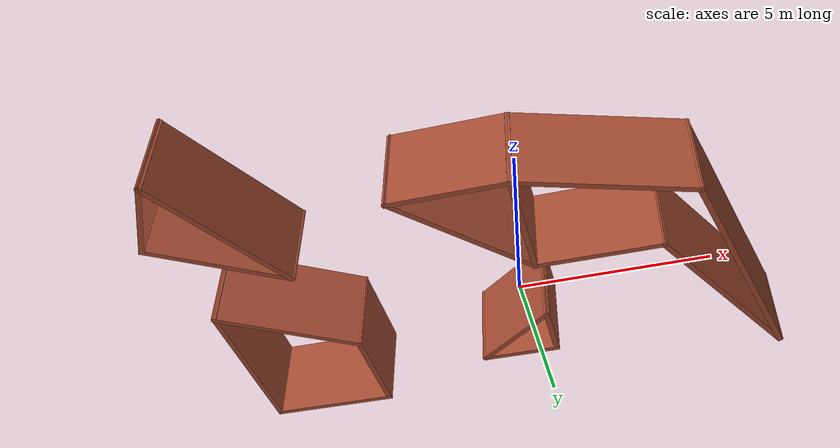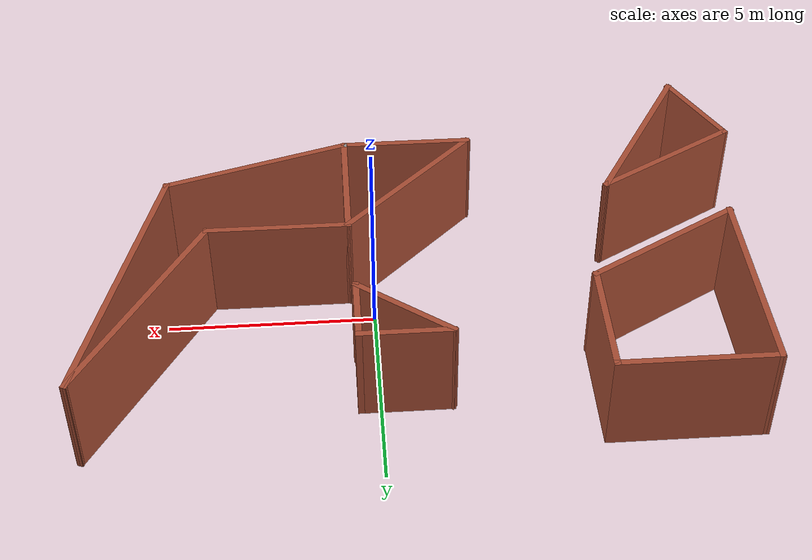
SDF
<?xml version='1.0'?>
<sdf version='1.6'>
  <model name='Untitled2'>
    <pose frame=''>-1.21157 -0.764057 0 0 -0 0</pose>
    <link name='Wall_10'>
      <collision name='Wall_10_Collision'>
        <geometry>
          <box>
            <size>1.75 0.15 2.5</size>
          </box>
        </geometry>
        <pose frame=''>0 0 1.25 0 -0 0</pose>
      </collision>
      <visual name='Wall_10_Visual'>
        <pose frame=''>0 0 1.25 0 -0 0</pose>
        <geometry>
          <box>
            <size>1.75 0.15 2.5</size>
          </box>
        </geometry>
        <material>
          <script>
            <uri>file://media/materials/scripts/gazebo.material</uri>
            <name>Gazebo/Bricks</name>
          </script>
          <ambient>1 1 1 1</ambient>
        </material>
        <meta>
          <layer>0</layer>
        </meta>
      </visual>
      <pose frame=''>1.67157 2.96406 0 0 -0 1.5708</pose>
    </link>
    <link name='Wall_11'>
      <collision name='Wall_11_Collision'>
        <geometry>
          <box>
            <size>2.25 0.15 2.5</size>
          </box>
        </geometry>
        <pose frame=''>0 0 1.25 0 -0 0</pose>
      </collision>
      <visual name='Wall_11_Visual'>
        <pose frame=''>0 0 1.25 0 -0 0</pose>
        <geometry>
          <box>
            <size>2.25 0.15 2.5</size>
          </box>
        </geometry>
        <material>
          <script>
            <uri>file://media/materials/scripts/gazebo.material</uri>
            <name>Gazebo/Bricks</name>
          </script>
          <ambient>1 1 1 1</ambient>
        </material>
        <meta>
          <layer>0</layer>
        </meta>
      </visual>
      <pose frame=''>0.621566 3.76406 0 0 -0 3.14159</pose>
    </link>
    <link name='Wall_12'>
      <collision name='Wall_12_Collision'>
        <geometry>
          <box>
            <size>2.79008 0.15 2.5</size>
          </box>
        </geometry>
        <pose frame=''>0 0 1.25 0 -0 0</pose>
      </collision>
      <visual name='Wall_12_Visual'>
        <pose frame=''>0 0 1.25 0 -0 0</pose>
        <geometry>
          <box>
            <size>2.79008 0.15 2.5</size>
          </box>
        </geometry>
        <material>
          <script>
            <uri>file://media/materials/scripts/gazebo.material</uri>
            <name>Gazebo/Bricks</name>
          </script>
          <ambient>1 1 1 1</ambient>
        </material>
        <meta>
          <layer>0</layer>
        </meta>
      </visual>
      <pose frame=''>0.621566 2.96406 0 0 -0 -0.651077</pose>
    </link>
    <link name='Wall_14'>
      <collision name='Wall_14_Collision'>
        <geometry>
          <box>
            <size>4.53406 0.15 2.5</size>
          </box>
        </geometry>
        <pose frame=''>0 0 1.25 0 -0 0</pose>
      </collision>
      <visual name='Wall_14_Visual'>
        <pose frame=''>0 0 1.25 0 -0 0</pose>
        <geometry>
          <box>
            <size>4.53406 0.15 2.5</size>
          </box>
        </geometry>
        <material>
          <script>
            <uri>file://media/materials/scripts/gazebo.material</uri>
            <name>Gazebo/Bricks</name>
          </script>
          <ambient>1 1 1 1</ambient>
        </material>
        <meta>
          <layer>0</layer>
        </meta>
      </visual>
      <pose frame=''>0.221566 -1.49594 0 0 -0 -2.35619</pose>
    </link>
    <link name='Wall_16'>
      <collision name='Wall_16_Collision'>
        <geometry>
          <box>
            <size>3.75 0.15 2.5</size>
          </box>
        </geometry>
        <pose frame=''>0 0 1.25 0 -0 0</pose>
      </collision>
      <visual name='Wall_16_Visual'>
        <pose frame=''>0 0 1.25 0 -0 0</pose>
        <geometry>
          <box>
            <size>3.75 0.15 2.5</size>
          </box>
        </geometry>
        <material>
          <script>
            <uri>file://media/materials/scripts/gazebo.material</uri>
            <name>Gazebo/Bricks</name>
          </script>
          <ambient>1 1 1 1</ambient>
        </material>
        <meta>
          <layer>0</layer>
        </meta>
      </visual>
      <pose frame=''>-5.61939 5.0377 0 0 -0 0</pose>
    </link>
    <link name='Wall_17'>
      <collision name='Wall_17_Collision'>
        <geometry>
          <box>
            <size>3 0.15 2.5</size>
          </box>
        </geometry>
        <pose frame=''>0 0 1.25 0 -0 0</pose>
      </collision>
      <visual name='Wall_17_Visual'>
        <pose frame=''>0 0 1.25 0 -0 0</pose>
        <geometry>
          <box>
            <size>3 0.15 2.5</size>
          </box>
        </geometry>
        <material>
          <script>
            <uri>file://media/materials/scripts/gazebo.material</uri>
            <name>Gazebo/Bricks</name>
          </script>
          <ambient>1 1 1 1</ambient>
        </material>
        <meta>
          <layer>0</layer>
        </meta>
      </visual>
      <pose frame=''>-3.81939 3.61269 0 0 -0 -1.5708</pose>
    </link>
    <link name='Wall_18'>
      <collision name='Wall_18_Collision'>
        <geometry>
          <box>
            <size>4.25 0.15 2.5</size>
          </box>
        </geometry>
        <pose frame=''>0 0 1.25 0 -0 0</pose>
      </collision>
      <visual name='Wall_18_Visual'>
        <pose frame=''>0 0 1.25 0 -0 0</pose>
        <geometry>
          <box>
            <size>4.25 0.15 2.5</size>
          </box>
        </geometry>
        <material>
          <script>
            <uri>file://media/materials/scripts/gazebo.material</uri>
            <name>Gazebo/Bricks</name>
          </script>
          <ambient>1 1 1 1</ambient>
        </material>
        <meta>
          <layer>0</layer>
        </meta>
      </visual>
      <pose frame=''>-5.59474 1.1627 0 0 -0 -2.61799</pose>
    </link>
    <link name='Wall_19'>
      <collision name='Wall_19_Collision'>
        <geometry>
          <box>
            <size>5.05025 0.15 2.5</size>
          </box>
        </geometry>
        <pose frame=''>0 0 1.25 0 -0 0</pose>
      </collision>
      <visual name='Wall_19_Visual'>
        <pose frame=''>0 0 1.25 0 -0 0</pose>
        <geometry>
          <box>
            <size>5.05025 0.15 2.5</size>
          </box>
        </geometry>
        <material>
          <script>
            <uri>file://media/materials/scripts/gazebo.material</uri>
            <name>Gazebo/Bricks</name>
          </script>
          <ambient>1 1 1 1</ambient>
        </material>
        <meta>
          <layer>0</layer>
        </meta>
      </visual>
      <pose frame=''>-7.39474 2.5877 0 0 -0 1.58086</pose>
    </link>
    <link name='Wall_26'>
      <collision name='Wall_26_Collision'>
        <geometry>
          <box>
            <size>5.75 0.15 2.5</size>
          </box>
        </geometry>
        <pose frame=''>0 0 1.25 0 -0 0</pose>
      </collision>
      <visual name='Wall_26_Visual'>
        <pose frame=''>0 0 1.25 0 -0 0</pose>
        <geometry>
          <box>
            <size>5.75 0.15 2.5</size>
          </box>
        </geometry>
        <material>
          <script>
            <uri>file://media/materials/scripts/gazebo.material</uri>
            <name>Gazebo/Bricks</name>
          </script>
          <ambient>1 1 1 1</ambient>
        </material>
        <meta>
          <layer>0</layer>
        </meta>
      </visual>
      <pose frame=''>6.52157 2.47893 0 0 -0 1.0472</pose>
    </link>
    <link name='Wall_27'>
      <collision name='Wall_27_Collision'>
        <geometry>
          <box>
            <size>7 0.15 2.5</size>
          </box>
        </geometry>
        <pose frame=''>0 0 1.25 0 -0 0</pose>
      </collision>
      <visual name='Wall_27_Visual'>
        <pose frame=''>0 0 1.25 0 -0 0</pose>
        <geometry>
          <box>
            <size>7 0.15 2.5</size>
          </box>
        </geometry>
        <material>
          <script>
            <uri>file://media/materials/scripts/gazebo.material</uri>
            <name>Gazebo/Bricks</name>
          </script>
          <ambient>1 1 1 1</ambient>
        </material>
        <meta>
          <layer>0</layer>
        </meta>
      </visual>
      <pose frame=''>7.03511 1.5955 0 0 -0 -1.8326</pose>
    </link>
    <link name='Wall_28'>
      <collision name='Wall_28_Collision'>
        <geometry>
          <box>
            <size>4.72561 0.15 2.5</size>
          </box>
        </geometry>
        <pose frame=''>0 0 1.25 0 -0 0</pose>
      </collision>
      <visual name='Wall_28_Visual'>
        <pose frame=''>0 0 1.25 0 -0 0</pose>
        <geometry>
          <box>
            <size>4.72561 0.15 2.5</size>
          </box>
        </geometry>
        <material>
          <script>
            <uri>file://media/materials/scripts/gazebo.material</uri>
            <name>Gazebo/Bricks</name>
          </script>
          <ambient>1 1 1 1</ambient>
        </material>
        <meta>
          <layer>0</layer>
        </meta>
      </visual>
      <pose frame=''>3.96011 -2.37937 0 0 -0 -2.84594</pose>
    </link>
    <link name='Wall_3'>
      <collision name='Wall_3_Collision'>
        <geometry>
          <box>
            <size>3.25 0.15 2.5</size>
          </box>
        </geometry>
        <pose frame=''>0 0 1.25 0 -0 0</pose>
      </collision>
      <visual name='Wall_3_Visual'>
        <pose frame=''>0 0 1.25 0 -0 0</pose>
        <geometry>
          <box>
            <size>3.25 0.15 2.5</size>
          </box>
        </geometry>
        <material>
          <script>
            <uri>file://media/materials/scripts/gazebo.material</uri>
            <name>Gazebo/Bricks</name>
          </script>
          <ambient>1 1 1 1</ambient>
        </material>
        <meta>
          <layer>0</layer>
        </meta>
      </visual>
      <pose frame=''>0.221566 -3.04594 0 0 -0 0</pose>
    </link>
    <link name='Wall_30'>
      <collision name='Wall_30_Collision'>
        <geometry>
          <box>
            <size>4 0.15 2.5</size>
          </box>
        </geometry>
        <pose frame=''>0 0 1.25 0 -0 0</pose>
      </collision>
      <visual name='Wall_30_Visual'>
        <pose frame=''>0 0 1.25 0 -0 0</pose>
        <geometry>
          <box>
            <size>4 0.15 2.5</size>
          </box>
        </geometry>
        <material>
          <script>
            <uri>file://media/materials/scripts/gazebo.material</uri>
            <name>Gazebo/Bricks</name>
          </script>
          <ambient>1 1 1 1</ambient>
        </material>
        <meta>
          <layer>0</layer>
        </meta>
      </visual>
      <pose frame=''>-6.25447 -1.98978 0 0 -0 0.523599</pose>
    </link>
    <link name='Wall_31'>
      <collision name='Wall_31_Collision'>
        <geometry>
          <box>
            <size>4.75 0.15 2.5</size>
          </box>
        </geometry>
        <pose frame=''>0 0 1.25 0 -0 0</pose>
      </collision>
      <visual name='Wall_31_Visual'>
        <pose frame=''>0 0 1.25 0 -0 0</pose>
        <geometry>
          <box>
            <size>4.75 0.15 2.5</size>
          </box>
        </geometry>
        <material>
          <script>
            <uri>file://media/materials/scripts/gazebo.material</uri>
            <name>Gazebo/Bricks</name>
          </script>
          <ambient>1 1 1 1</ambient>
        </material>
        <meta>
          <layer>0</layer>
        </meta>
      </visual>
      <pose frame=''>-5.73737 -3.01913 0 0 -0 -2.0944</pose>
    </link>
    <link name='Wall_32'>
      <collision name='Wall_32_Collision'>
        <geometry>
          <box>
            <size>2.45388 0.15 2.5</size>
          </box>
        </geometry>
        <pose frame=''>0 0 1.25 0 -0 0</pose>
      </collision>
      <visual name='Wall_32_Visual'>
        <pose frame=''>0 0 1.25 0 -0 0</pose>
        <geometry>
          <box>
            <size>2.45388 0.15 2.5</size>
          </box>
        </geometry>
        <material>
          <script>
            <uri>file://media/materials/scripts/gazebo.material</uri>
            <name>Gazebo/Bricks</name>
          </script>
          <ambient>1 1 1 1</ambient>
        </material>
        <meta>
          <layer>0</layer>
        </meta>
      </visual>
      <pose frame=''>-7.40447 -3.98163 0 0 -0 2.03632</pose>
    </link>
    <link name='Wall_4'>
      <collision name='Wall_4_Collision'>
        <geometry>
          <box>
            <size>0.15 0.15 2.5</size>
          </box>
        </geometry>
        <pose frame=''>0 0 1.25 0 -0 0</pose>
      </collision>
      <visual name='Wall_4_Visual'>
        <pose frame=''>0 0 1.25 0 -0 0</pose>
        <geometry>
          <box>
            <size>0.15 0.15 2.5</size>
          </box>
        </geometry>
        <material>
          <script>
            <uri>file://media/materials/scripts/gazebo.material</uri>
            <name>Gazebo/Grey</name>
          </script>
          <ambient>1 1 1 1</ambient>
        </material>
        <meta>
          <layer>0</layer>
        </meta>
      </visual>
      <pose frame=''>1.77157 -3.04594 0 0 -0 0</pose>
    </link>
    <link name='Wall_5'>
      <collision name='Wall_5_Collision'>
        <geometry>
          <box>
            <size>3.25 0.15 2.5</size>
          </box>
        </geometry>
        <pose frame=''>0 0 1.25 0 -0 0</pose>
      </collision>
      <visual name='Wall_5_Visual'>
        <pose frame=''>0 0 1.25 0 -0 0</pose>
        <geometry>
          <box>
            <size>3.25 0.15 2.5</size>
          </box>
        </geometry>
        <material>
          <script>
            <uri>file://media/materials/scripts/gazebo.material</uri>
            <name>Gazebo/Bricks</name>
          </script>
          <ambient>1 1 1 1</ambient>
        </material>
        <meta>
          <layer>0</layer>
        </meta>
      </visual>
      <pose frame=''>1.77157 -1.49594 0 0 -0 1.5708</pose>
    </link>
    <link name='Wall_6'>
      <collision name='Wall_6_Collision'>
        <geometry>
          <box>
            <size>0.15 0.15 2.5</size>
          </box>
        </geometry>
        <pose frame=''>0 0 1.25 0 -0 0</pose>
      </collision>
      <visual name='Wall_6_Visual'>
        <pose frame=''>0 0 1.25 0 -0 0</pose>
        <geometry>
          <box>
            <size>0.15 0.15 2.5</size>
          </box>
        </geometry>
        <material>
          <script>
            <uri>file://media/materials/scripts/gazebo.material</uri>
            <name>Gazebo/Grey</name>
          </script>
          <ambient>1 1 1 1</ambient>
        </material>
        <meta>
          <layer>0</layer>
        </meta>
      </visual>
      <pose frame=''>1.77157 0.054057 0 0 -0 0</pose>
    </link>
    <link name='Wall_7'>
      <collision name='Wall_7_Collision'>
        <geometry>
          <box>
            <size>3.5 0.15 2.5</size>
          </box>
        </geometry>
        <pose frame=''>0 0 1.25 0 -0 0</pose>
      </collision>
      <visual name='Wall_7_Visual'>
        <pose frame=''>0 0 1.25 0 -0 0</pose>
        <geometry>
          <box>
            <size>3.5 0.15 2.5</size>
          </box>
        </geometry>
        <material>
          <script>
            <uri>file://media/materials/scripts/gazebo.material</uri>
            <name>Gazebo/Bricks</name>
          </script>
          <ambient>1 1 1 1</ambient>
        </material>
        <meta>
          <layer>0</layer>
        </meta>
      </visual>
      <pose frame=''>3.44657 0.054057 0 0 -0 0</pose>
    </link>
    <static>1</static>
  </model>
</sdf>
